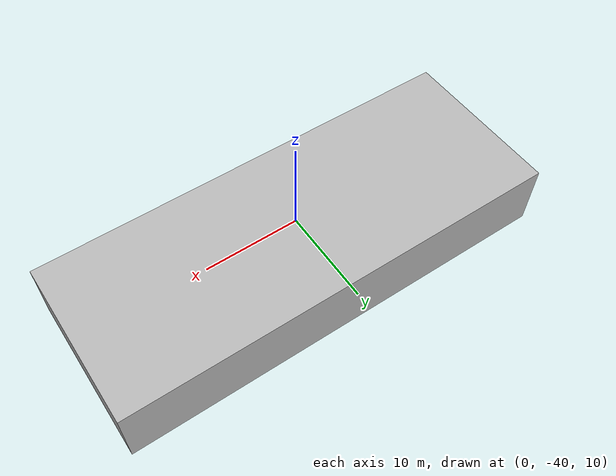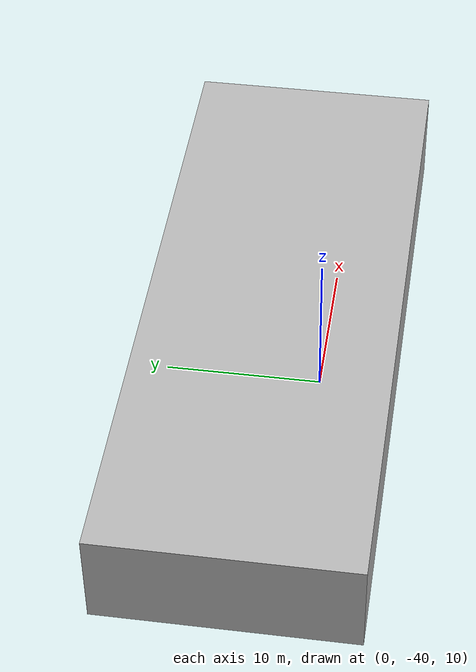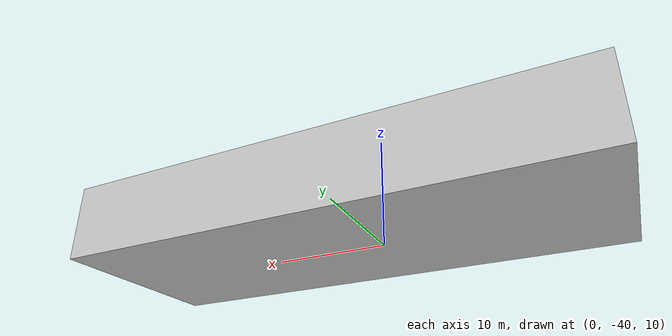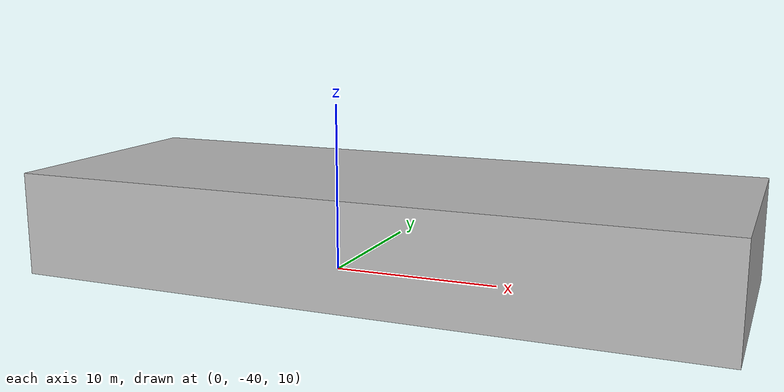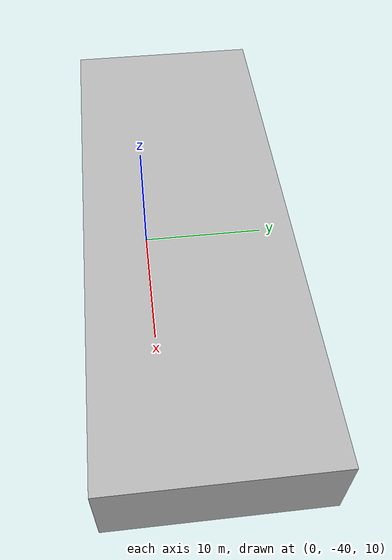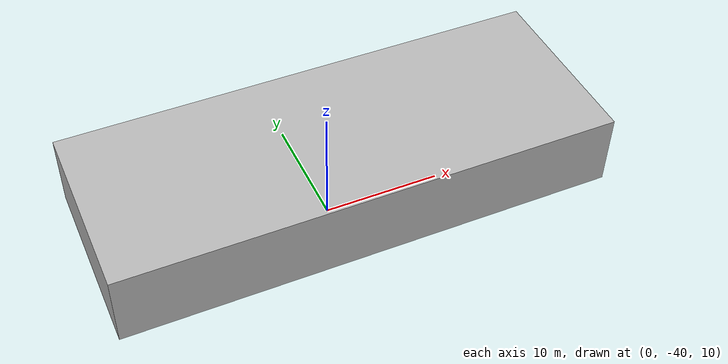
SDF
<?xml version="1.0"?>
<sdf version="1.6">
    <model name="satsop_floor01_tile6">
        <static>true</static>
        <link name="base_link">
            <collision name="collision">
                <pose>0 0 0 0 0 0</pose>
                <geometry>
                    <mesh>
                        <uri>meshes/6.dae</uri>
                        <scale>1.0 1.0 1.0</scale>
                    </mesh>
                </geometry>
            </collision>
            <visual name="visual">
                <geometry>
                    <mesh>
                        <uri>meshes/6.dae</uri>
                    </mesh>
                </geometry>
            </visual>
        </link>
    </model>
</sdf>
